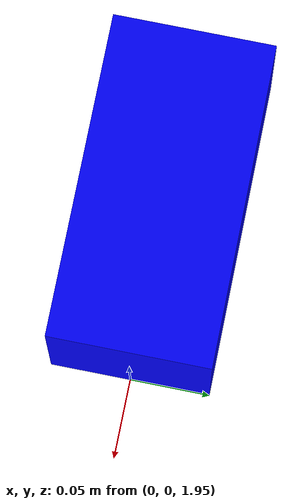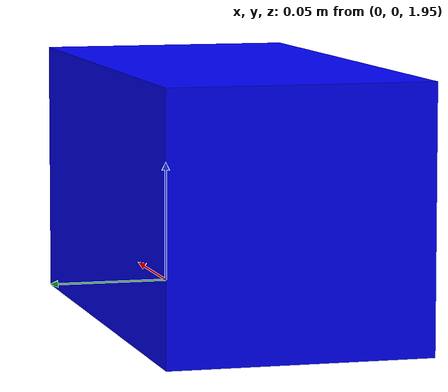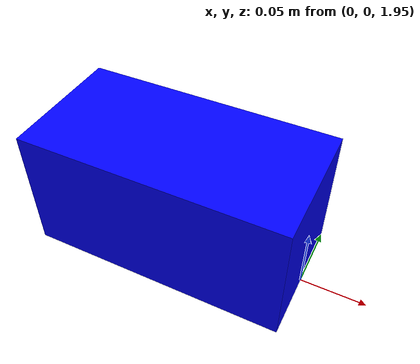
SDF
<?xml version="1.0" ?>
<sdf version="1.6">
  <model name="overhead_camera2">
    <static>true</static>
    <link name="camera_link">
      <pose>0 0 2 0 1.5708 0</pose> <!-- Adjust position and orientation as needed -->
      <sensor name="camera" type="camera">
        <camera>
          <horizontal_fov>1.047</horizontal_fov>
          <image>
            <width>640</width>
            <height>480</height>
            <format>R8G8B8</format>
          </image>
          <clip>
            <near>0.01</near>
            <far>100</far>
          </clip>
        </camera>
        <plugin name="camera_controller" filename="libgazebo_ros_camera.so">
          <update_rate>30.0</update_rate>
          <camera_name>overhead_camera2</camera_name>
          <image_topic_name>/overhead_camera2/image_raw</image_topic_name>
          <frame_name>camera_link</frame_name>
          <ros>
            <namespace>overhead_camera</namespace>
          </ros>
        </plugin>
      </sensor>
    <!-- Visual representation of the camera (cuboid) -->
      <visual name="camera_visual1">
        <geometry>
          <box>
            <size>0.1 0.1 0.2</size> <!-- Size of the cuboid -->
          </box>
        </geometry>
        <material>
          <ambient>0.0 0.0 1.0 1.0</ambient> <!-- Blue color -->
          <diffuse>0.0 0.0 1.0 1.0</diffuse>
          <specular>0.0 0.0 0.5 1.0</specular>
          <emissive>0.0 0.0 0.0 1.0</emissive>
        </material>
        <pose>0 0 -0.1 0 0 0</pose> <!-- Position relative to the camera -->
      </visual>
    </link>
  </model>
</sdf>
